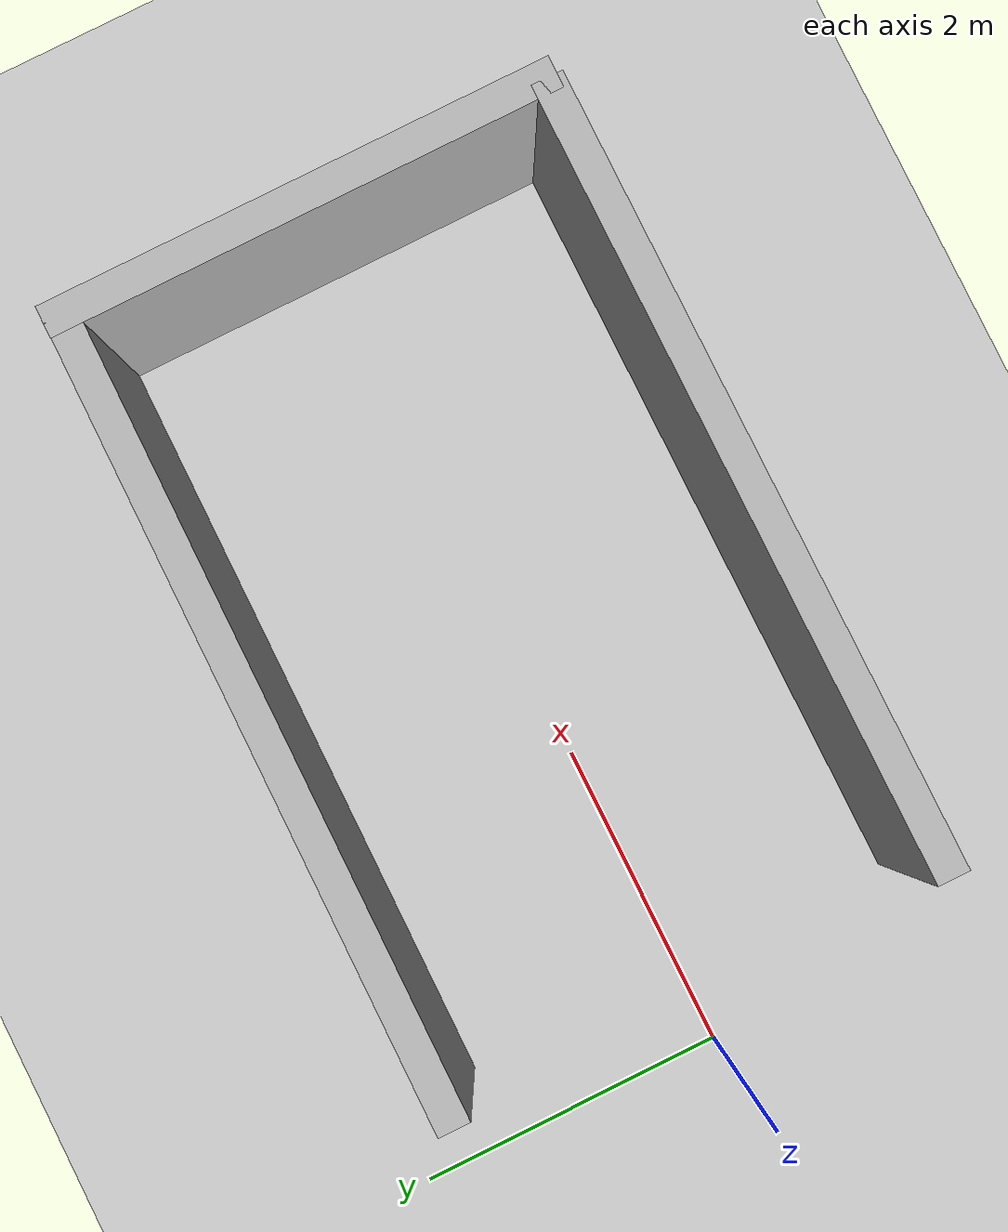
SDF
<?xml version="1.0"?>
<sdf version="1.6">
  <world name="v2-04g-r3-maneuver-s5033">
    <gravity>0 0 -9.81</gravity>
    <physics name="v2_deterministic" type="ode">
      <max_step_size>0.002</max_step_size>
      <real_time_update_rate>500</real_time_update_rate>
    </physics>
    <include>
      <uri>model://sun</uri>
    </include>
    <include>
      <uri>model://ground_plane</uri>
    </include>
    <model name="bay-left">
      <static>true</static>
      <pose>3.005667413 1.524772934 0.600000000 0 0 -0.003116743</pose>
      <link name="link">
        <collision name="collision">
          <geometry>
            <box>
              <size>5.000000 0.200000 1.200000</size>
            </box>
          </geometry>
        </collision>
        <visual name="visual">
          <geometry>
            <box>
              <size>5.000000 0.200000 1.200000</size>
            </box>
          </geometry>
        </visual>
      </link>
    </model>
    <model name="bay-right">
      <static>true</static>
      <pose>3.010576810 -1.523244651 0.600000000 0 0 0.002548095</pose>
      <link name="link">
        <collision name="collision">
          <geometry>
            <box>
              <size>5.000000 0.200000 1.200000</size>
            </box>
          </geometry>
        </collision>
        <visual name="visual">
          <geometry>
            <box>
              <size>5.000000 0.200000 1.200000</size>
            </box>
          </geometry>
        </visual>
      </link>
    </model>
    <model name="bay-back">
      <static>true</static>
      <pose>5.516697027 0.020197815 0.600000000 0 0 0.002105712</pose>
      <link name="link">
        <collision name="collision">
          <geometry>
            <box>
              <size>0.200000 3.200000 1.200000</size>
            </box>
          </geometry>
        </collision>
        <visual name="visual">
          <geometry>
            <box>
              <size>0.200000 3.200000 1.200000</size>
            </box>
          </geometry>
        </visual>
      </link>
    </model>
  </world>
</sdf>
